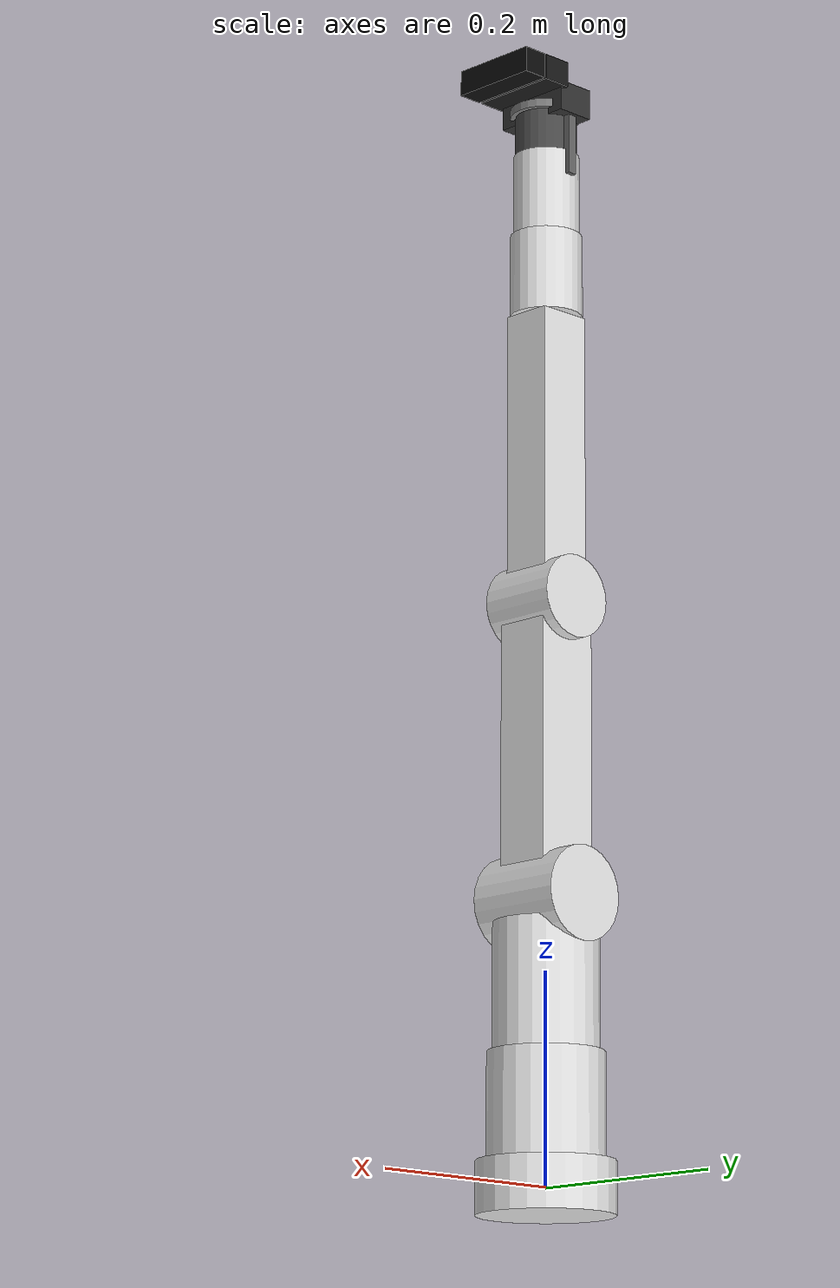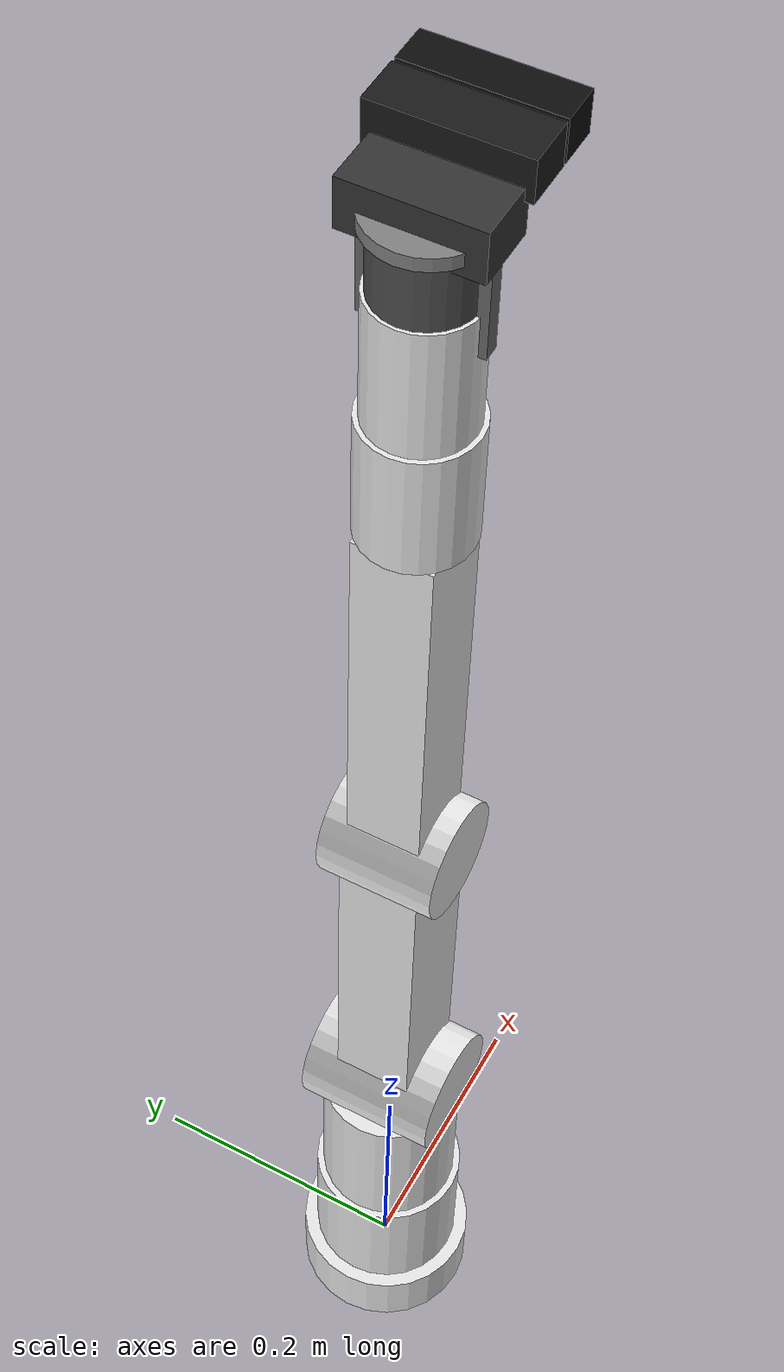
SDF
<?xml version="1.0" ?>
<sdf version="1.9">
  <model name="xarm6">
    <static>false</static>

    <!-- Base Link (mounted to table) -->
    <link name="link_base">
      <inertial>
        <mass>2.0</mass>
        <inertia>
          <ixx>0.01</ixx><iyy>0.01</iyy><izz>0.01</izz>
        </inertia>
      </inertial>
      <visual name="base_visual">
        <geometry>
          <cylinder><radius>0.065</radius><length>0.05</length></cylinder>
        </geometry>
        <material>
          <ambient>0.9 0.9 0.9 1</ambient>
          <diffuse>0.9 0.9 0.9 1</diffuse>
        </material>
      </visual>
      <collision name="base_collision">
        <geometry>
          <cylinder><radius>0.065</radius><length>0.05</length></cylinder>
        </geometry>
      </collision>
    </link>

    <!-- Link 1: Shoulder rotation (267mm from base to joint 2) -->
    <link name="link1">
      <pose relative_to="joint1">0 0 0 0 0 0</pose>
      <inertial>
        <mass>2.5</mass>
        <pose>0 0 0.1 0 0 0</pose>
        <inertia>
          <ixx>0.02</ixx><iyy>0.02</iyy><izz>0.01</izz>
        </inertia>
      </inertial>
      <visual name="link1_housing">
        <pose>0 0 0.05 0 0 0</pose>
        <geometry>
          <cylinder><radius>0.055</radius><length>0.1</length></cylinder>
        </geometry>
        <material>
          <ambient>0.9 0.9 0.9 1</ambient>
          <diffuse>0.9 0.9 0.9 1</diffuse>
        </material>
      </visual>
      <visual name="link1_shoulder">
        <pose>0 0 0.16 0 0 0</pose>
        <geometry>
          <cylinder><radius>0.05</radius><length>0.12</length></cylinder>
        </geometry>
        <material>
          <ambient>0.9 0.9 0.9 1</ambient>
        </material>
      </visual>
      <collision name="link1_collision">
        <pose>0 0 0.1 0 0 0</pose>
        <geometry>
          <cylinder><radius>0.06</radius><length>0.2</length></cylinder>
        </geometry>
      </collision>
    </link>

    <joint name="joint1" type="revolute">
      <parent>link_base</parent>
      <child>link1</child>
      <pose relative_to="link_base">0 0 0.025 0 0 0</pose>
      <axis>
        <xyz>0 0 1</xyz>
        <limit>
          <lower>-6.28</lower>
          <upper>6.28</upper>
          <effort>50</effort>
          <velocity>3.14</velocity>
        </limit>
      </axis>
    </joint>

    <!-- Link 2: Upper arm (284.5mm) -->
    <link name="link2">
      <pose relative_to="joint2">0 0 0 0 0 0</pose>
      <inertial>
        <mass>1.8</mass>
        <pose>0 0 0.142 0 0 0</pose>
        <inertia>
          <ixx>0.03</ixx><iyy>0.03</iyy><izz>0.005</izz>
        </inertia>
      </inertial>
      <visual name="link2_joint">
        <pose>0 0 0 1.5708 0 0</pose>
        <geometry>
          <cylinder><radius>0.045</radius><length>0.1</length></cylinder>
        </geometry>
        <material>
          <ambient>0.9 0.9 0.9 1</ambient>
        </material>
      </visual>
      <visual name="link2_arm">
        <pose>0 0 0.142 0 0 0</pose>
        <geometry>
          <box><size>0.065 0.055 0.285</size></box>
        </geometry>
        <material>
          <ambient>0.9 0.9 0.9 1</ambient>
        </material>
      </visual>
      <collision name="link2_collision">
        <pose>0 0 0.142 0 0 0</pose>
        <geometry>
          <box><size>0.07 0.06 0.29</size></box>
        </geometry>
      </collision>
    </link>

    <joint name="joint2" type="revolute">
      <parent>link1</parent>
      <child>link2</child>
      <pose relative_to="link1">0 0 0.242 0 0 0</pose>
      <axis>
        <xyz>0 1 0</xyz>
        <limit>
          <lower>-2.06</lower>
          <upper>2.09</upper>
          <effort>50</effort>
          <velocity>3.14</velocity>
        </limit>
      </axis>
    </joint>

    <!-- Link 3: Forearm (284.5mm) -->
    <link name="link3">
      <pose relative_to="joint3">0 0 0 0 0 0</pose>
      <inertial>
        <mass>1.5</mass>
        <pose>0 0 0.142 0 0 0</pose>
        <inertia>
          <ixx>0.025</ixx><iyy>0.025</iyy><izz>0.004</izz>
        </inertia>
      </inertial>
      <visual name="link3_joint">
        <pose>0 0 0 1.5708 0 0</pose>
        <geometry>
          <cylinder><radius>0.04</radius><length>0.08</length></cylinder>
        </geometry>
        <material>
          <ambient>0.9 0.9 0.9 1</ambient>
        </material>
      </visual>
      <visual name="link3_arm">
        <pose>0 0 0.142 0 0 0</pose>
        <geometry>
          <box><size>0.055 0.05 0.285</size></box>
        </geometry>
        <material>
          <ambient>0.9 0.9 0.9 1</ambient>
        </material>
      </visual>
      <collision name="link3_collision">
        <pose>0 0 0.142 0 0 0</pose>
        <geometry>
          <box><size>0.06 0.055 0.29</size></box>
        </geometry>
      </collision>
    </link>

    <joint name="joint3" type="revolute">
      <parent>link2</parent>
      <child>link3</child>
      <pose relative_to="link2">0 0 0.2845 0 0 0</pose>
      <axis>
        <xyz>0 1 0</xyz>
        <limit>
          <lower>-3.93</lower>
          <upper>0.19</upper>
          <effort>32</effort>
          <velocity>3.14</velocity>
        </limit>
      </axis>
    </joint>

    <!-- Link 4: Wrist 1 (82mm) -->
    <link name="link4">
      <pose relative_to="joint4">0 0 0 0 0 0</pose>
      <inertial>
        <mass>1.2</mass>
        <pose>0 0 0.041 0 0 0</pose>
        <inertia>
          <ixx>0.008</ixx><iyy>0.008</iyy><izz>0.003</izz>
        </inertia>
      </inertial>
      <visual name="link4_visual">
        <pose>0 0 0.041 0 0 0</pose>
        <geometry>
          <cylinder><radius>0.035</radius><length>0.082</length></cylinder>
        </geometry>
        <material>
          <ambient>0.9 0.9 0.9 1</ambient>
        </material>
      </visual>
      <collision name="link4_collision">
        <pose>0 0 0.041 0 0 0</pose>
        <geometry>
          <cylinder><radius>0.04</radius><length>0.085</length></cylinder>
        </geometry>
      </collision>
    </link>

    <joint name="joint4" type="revolute">
      <parent>link3</parent>
      <child>link4</child>
      <pose relative_to="link3">0 0 0.2845 0 0 0</pose>
      <axis>
        <xyz>0 0 1</xyz>
        <limit>
          <lower>-6.28</lower>
          <upper>6.28</upper>
          <effort>20</effort>
          <velocity>3.14</velocity>
        </limit>
      </axis>
    </joint>

    <!-- Link 5: Wrist 2 (82mm) -->
    <link name="link5">
      <pose relative_to="joint5">0 0 0 0 0 0</pose>
      <inertial>
        <mass>1.0</mass>
        <pose>0 0 0.041 0 0 0</pose>
        <inertia>
          <ixx>0.006</ixx><iyy>0.006</iyy><izz>0.002</izz>
        </inertia>
      </inertial>
      <visual name="link5_visual">
        <pose>0 0 0.041 0 0 0</pose>
        <geometry>
          <cylinder><radius>0.032</radius><length>0.082</length></cylinder>
        </geometry>
        <material>
          <ambient>0.9 0.9 0.9 1</ambient>
        </material>
      </visual>
      <collision name="link5_collision">
        <pose>0 0 0.041 0 0 0</pose>
        <geometry>
          <cylinder><radius>0.035</radius><length>0.085</length></cylinder>
        </geometry>
      </collision>
    </link>

    <joint name="joint5" type="revolute">
      <parent>link4</parent>
      <child>link5</child>
      <pose relative_to="link4">0 0 0.082 0 0 0</pose>
      <axis>
        <xyz>0 1 0</xyz>
        <limit>
          <lower>-1.69</lower>
          <upper>3.14</upper>
          <effort>20</effort>
          <velocity>3.14</velocity>
        </limit>
      </axis>
    </joint>

    <!-- Link 6: Wrist 3 / Flange (42mm to flange surface) -->
    <link name="link6">
      <pose relative_to="joint6">0 0 0 0 0 0</pose>
      <inertial>
        <mass>0.5</mass>
        <pose>0 0 0.021 0 0 0</pose>
        <inertia>
          <ixx>0.002</ixx><iyy>0.002</iyy><izz>0.001</izz>
        </inertia>
      </inertial>
      <visual name="link6_visual">
        <pose>0 0 0.021 0 0 0</pose>
        <geometry>
          <cylinder><radius>0.03</radius><length>0.042</length></cylinder>
        </geometry>
        <material>
          <ambient>0.3 0.3 0.3 1</ambient>
          <diffuse>0.3 0.3 0.3 1</diffuse>
        </material>
      </visual>
      <visual name="flange">
        <pose>0 0 0.045 0 0 0</pose>
        <geometry>
          <cylinder><radius>0.035</radius><length>0.008</length></cylinder>
        </geometry>
        <material>
          <ambient>0.5 0.5 0.5 1</ambient>
        </material>
      </visual>
      <collision name="link6_collision">
        <pose>0 0 0.025 0 0 0</pose>
        <geometry>
          <cylinder><radius>0.035</radius><length>0.05</length></cylinder>
        </geometry>
      </collision>
    </link>

    <joint name="joint6" type="revolute">
      <parent>link5</parent>
      <child>link6</child>
      <pose relative_to="link5">0 0 0.082 0 0 0</pose>
      <axis>
        <xyz>0 0 1</xyz>
        <limit>
          <lower>-6.28</lower>
          <upper>6.28</upper>
          <effort>20</effort>
          <velocity>3.14</velocity>
        </limit>
      </axis>
    </joint>

    <!-- ==================== GRIPPER ==================== -->

    <!-- Gripper base attached to link6 flange -->
    <link name="gripper_base">
      <pose relative_to="gripper_joint">0 0 0 0 0 0</pose>
      <inertial>
        <mass>0.3</mass>
        <inertia>
          <ixx>0.001</ixx><iyy>0.001</iyy><izz>0.001</izz>
        </inertia>
      </inertial>
      <visual name="base_visual">
        <geometry>
          <box><size>0.04 0.08 0.03</size></box>
        </geometry>
        <material>
          <ambient>0.2 0.2 0.2 1</ambient>
          <diffuse>0.2 0.2 0.2 1</diffuse>
        </material>
      </visual>
      <!-- Camera mount bracket -->
      <visual name="camera_mount">
        <pose>0.03 0 0.02 0 0 0</pose>
        <geometry>
          <box><size>0.03 0.09 0.025</size></box>
        </geometry>
        <material>
          <ambient>0.1 0.1 0.1 1</ambient>
        </material>
      </visual>
      <collision name="gripper_collision">
        <geometry>
          <box><size>0.04 0.08 0.03</size></box>
        </geometry>
      </collision>

      <!-- Intel RealSense D435 (wrist-mounted) -->
      <visual name="realsense_d435">
        <pose>0.06 0 0.02 0 0 0</pose>
        <geometry>
          <box><size>0.025 0.09 0.025</size></box>
        </geometry>
        <material>
          <ambient>0.05 0.05 0.05 1</ambient>
          <diffuse>0.05 0.05 0.05 1</diffuse>
        </material>
      </visual>

      <sensor name="wrist_d435" type="rgbd_camera">
        <pose>0.07 0 0.02 0 0.4 0</pose>  <!-- Angled down toward work surface -->
        <always_on>1</always_on>
        <update_rate>30</update_rate>
        <topic>wrist_camera</topic>
        <camera>
          <horizontal_fov>1.518</horizontal_fov>  <!-- 87 degrees (D435 depth FOV) -->
          <image>
            <width>640</width>
            <height>480</height>
            <format>R8G8B8</format>
          </image>
          <clip>
            <near>0.2</near>
            <far>10.0</far>
          </clip>
          <depth_camera>
            <clip>
              <near>0.2</near>
              <far>10.0</far>
            </clip>
          </depth_camera>
        </camera>
      </sensor>
    </link>

    <joint name="gripper_joint" type="fixed">
      <parent>link6</parent>
      <child>gripper_base</child>
      <pose relative_to="link6">0 0 0.05 0 0 0</pose>
    </joint>

    <!-- Left finger -->
    <link name="left_finger">
      <pose relative_to="left_finger_joint">0 0 0 0 0 0</pose>
      <inertial>
        <mass>0.05</mass>
        <inertia>
          <ixx>0.0001</ixx><iyy>0.0001</iyy><izz>0.0001</izz>
        </inertia>
      </inertial>
      <visual name="finger_visual">
        <pose>0 0 -0.03 0 0 0</pose>
        <geometry>
          <box><size>0.01 0.012 0.06</size></box>
        </geometry>
        <material>
          <ambient>0.4 0.4 0.4 1</ambient>
        </material>
      </visual>
      <collision name="finger_collision">
        <pose>0 0 -0.03 0 0 0</pose>
        <geometry>
          <box><size>0.01 0.012 0.06</size></box>
        </geometry>
      </collision>
    </link>

    <joint name="left_finger_joint" type="prismatic">
      <parent>gripper_base</parent>
      <child>left_finger</child>
      <pose relative_to="gripper_base">0 0.03 -0.015 0 0 0</pose>
      <axis>
        <xyz>0 1 0</xyz>
        <limit>
          <lower>0</lower>
          <upper>0.02</upper>
          <effort>20</effort>
          <velocity>0.1</velocity>
        </limit>
      </axis>
    </joint>

    <!-- Right finger -->
    <link name="right_finger">
      <pose relative_to="right_finger_joint">0 0 0 0 0 0</pose>
      <inertial>
        <mass>0.05</mass>
        <inertia>
          <ixx>0.0001</ixx><iyy>0.0001</iyy><izz>0.0001</izz>
        </inertia>
      </inertial>
      <visual name="finger_visual">
        <pose>0 0 -0.03 0 0 0</pose>
        <geometry>
          <box><size>0.01 0.012 0.06</size></box>
        </geometry>
        <material>
          <ambient>0.4 0.4 0.4 1</ambient>
        </material>
      </visual>
      <collision name="finger_collision">
        <pose>0 0 -0.03 0 0 0</pose>
        <geometry>
          <box><size>0.01 0.012 0.06</size></box>
        </geometry>
      </collision>
    </link>

    <joint name="right_finger_joint" type="prismatic">
      <parent>gripper_base</parent>
      <child>right_finger</child>
      <pose relative_to="gripper_base">0 -0.03 -0.015 0 0 0</pose>
      <axis>
        <xyz>0 -1 0</xyz>
        <limit>
          <lower>0</lower>
          <upper>0.02</upper>
          <effort>20</effort>
          <velocity>0.1</velocity>
        </limit>
      </axis>
    </joint>

    <!-- Tool frame (tip of gripper fingers) -->
    <frame name="tool_frame" attached_to="gripper_base">
      <pose>0 0 -0.06 0 0 0</pose>
    </frame>

    <!-- ==================== JOINT CONTROLLERS ==================== -->
    <!-- Position controllers for each joint to enable position control -->

    <plugin filename="gz-sim-joint-position-controller-system"
            name="gz::sim::systems::JointPositionController">
      <joint_name>joint1</joint_name>
      <initial_position>3.14159</initial_position>  <!-- Facing toward table -->
      <p_gain>100</p_gain>
      <i_gain>0.1</i_gain>
      <d_gain>10</d_gain>
    </plugin>

    <plugin filename="gz-sim-joint-position-controller-system"
            name="gz::sim::systems::JointPositionController">
      <joint_name>joint2</joint_name>
      <initial_position>-0.6</initial_position>
      <p_gain>100</p_gain>
      <i_gain>0.1</i_gain>
      <d_gain>10</d_gain>
    </plugin>

    <plugin filename="gz-sim-joint-position-controller-system"
            name="gz::sim::systems::JointPositionController">
      <joint_name>joint3</joint_name>
      <initial_position>-1.2</initial_position>
      <p_gain>100</p_gain>
      <i_gain>0.1</i_gain>
      <d_gain>10</d_gain>
    </plugin>

    <plugin filename="gz-sim-joint-position-controller-system"
            name="gz::sim::systems::JointPositionController">
      <joint_name>joint4</joint_name>
      <initial_position>0</initial_position>
      <p_gain>50</p_gain>
      <i_gain>0.1</i_gain>
      <d_gain>5</d_gain>
    </plugin>

    <plugin filename="gz-sim-joint-position-controller-system"
            name="gz::sim::systems::JointPositionController">
      <joint_name>joint5</joint_name>
      <initial_position>-1.0</initial_position>
      <p_gain>50</p_gain>
      <i_gain>0.1</i_gain>
      <d_gain>5</d_gain>
    </plugin>

    <plugin filename="gz-sim-joint-position-controller-system"
            name="gz::sim::systems::JointPositionController">
      <joint_name>joint6</joint_name>
      <initial_position>0</initial_position>
      <p_gain>30</p_gain>
      <i_gain>0.1</i_gain>
      <d_gain>3</d_gain>
    </plugin>

    <!-- Gripper finger controllers -->
    <plugin filename="gz-sim-joint-position-controller-system"
            name="gz::sim::systems::JointPositionController">
      <joint_name>left_finger_joint</joint_name>
      <initial_position>0.01</initial_position>
      <p_gain>20</p_gain>
      <i_gain>0.1</i_gain>
      <d_gain>2</d_gain>
    </plugin>

    <plugin filename="gz-sim-joint-position-controller-system"
            name="gz::sim::systems::JointPositionController">
      <joint_name>right_finger_joint</joint_name>
      <initial_position>0.01</initial_position>
      <p_gain>20</p_gain>
      <i_gain>0.1</i_gain>
      <d_gain>2</d_gain>
    </plugin>

  </model>
</sdf>
